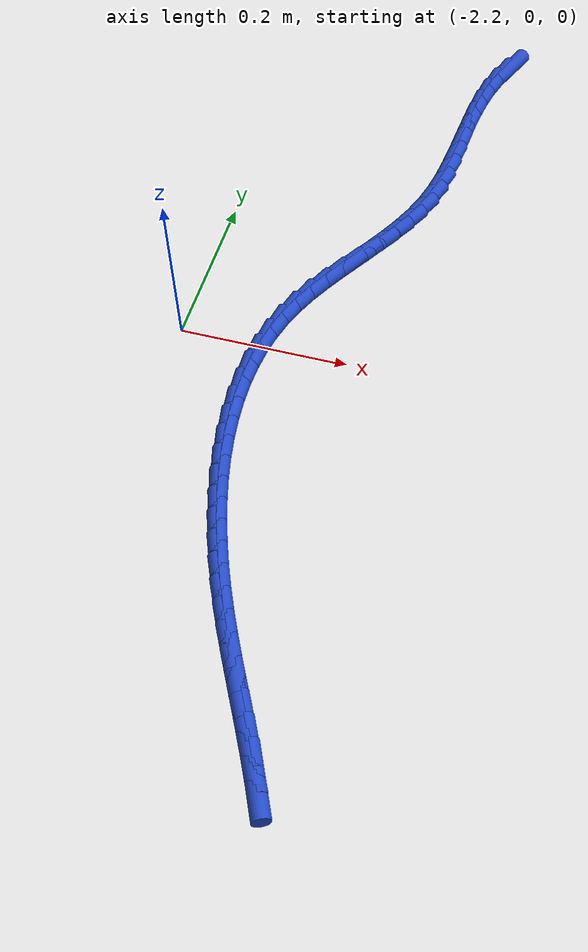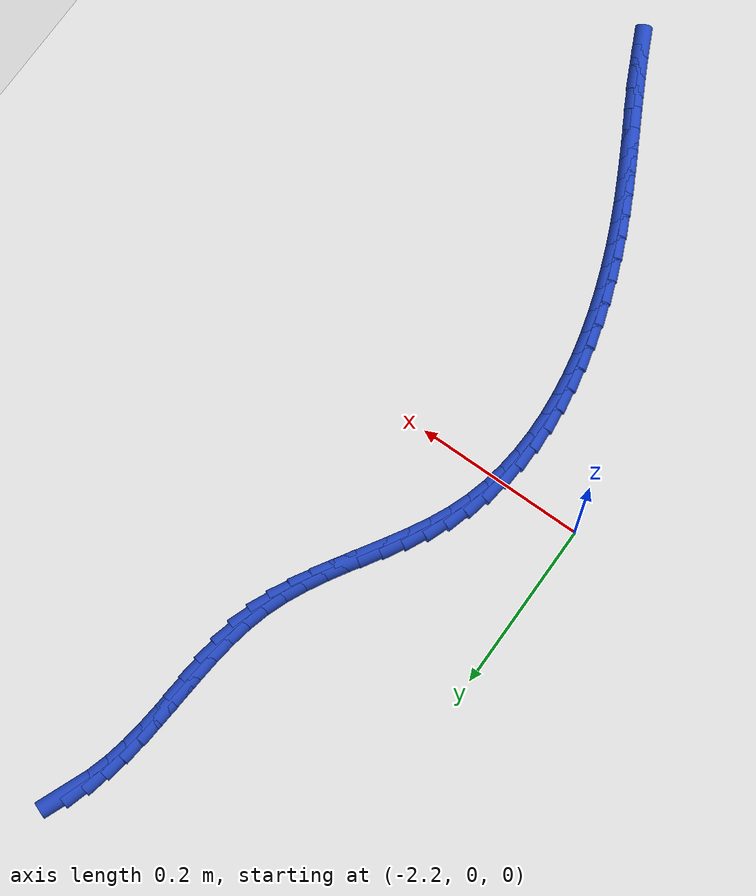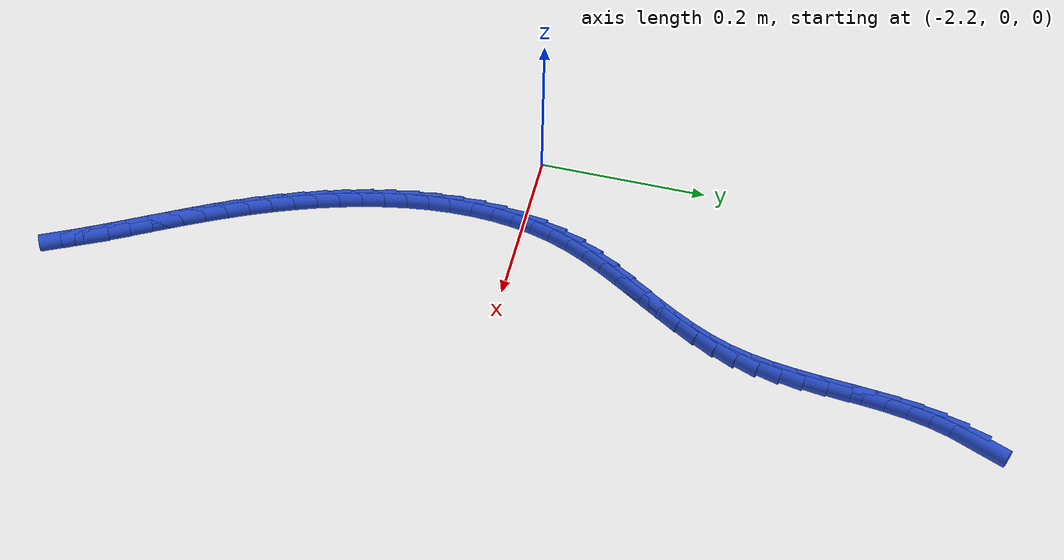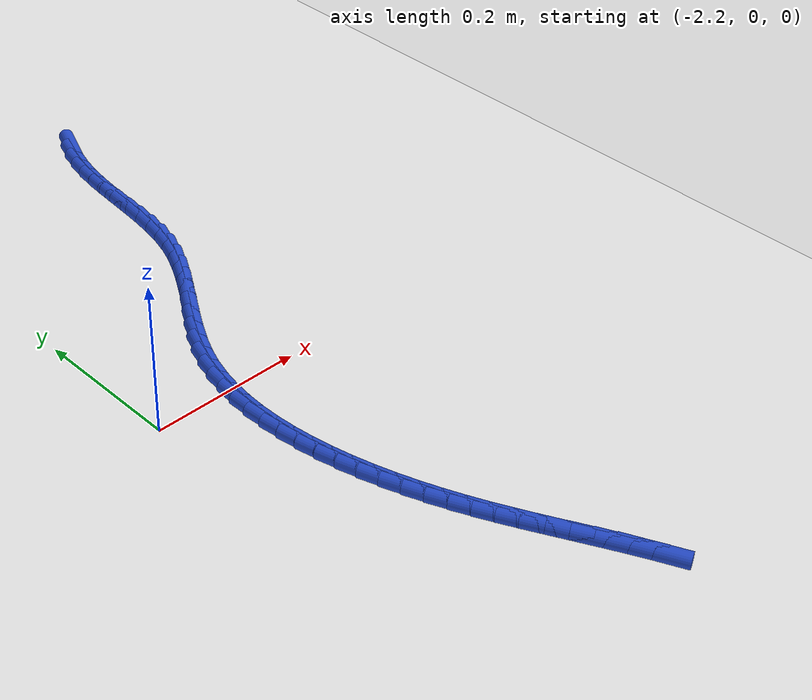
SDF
<sdf version="1.6">
 <world name="default">
  <model name="ground_plane">
   <static>1</static>
   <link name="link">
    <collision name="collision">
     <geometry><plane><normal>0 0 1</normal><size>100 100</size></plane></geometry>
     <surface><friction><ode><mu>100</mu><mu2>50</mu2></ode></friction></surface>
    </collision>
    <visual name="visual">
     <cast_shadows>0</cast_shadows>
     <geometry><plane><normal>0 0 1</normal><size>100 100</size></plane></geometry>
     <material>
      <script><uri>file://media/materials/scripts/gazebo.material</uri><name>Gazebo/WhiteGlow</name></script>
     </material>
    </visual>
   </link>
  </model>
  <model name="line">
   <link name="link_107">
    <pose>-1.9240325113513077 0.5416836741205137 0.01 0 1.57 1.184260432014111</pose>
    <collision name="collision">
     <geometry><cylinder><radius>0.01</radius><length>0.08</length></cylinder></geometry>
    </collision>
    <visual name="visual">
     <material>
      <script><name>Gazebo/Blue</name><uri>file://media/materials/scripts/gazebo.material</uri></script>
     </material>
     <geometry><cylinder><radius>0.01</radius><length>0.08</length></cylinder></geometry>
    </visual>
   </link>
   <link name="link_108">
    <pose>-1.9334057015845771 0.5186543584100881 0.01 0 1.57 1.2855655698755204</pose>
    <collision name="collision">
     <geometry><cylinder><radius>0.01</radius><length>0.08</length></cylinder></geometry>
    </collision>
    <visual name="visual">
     <material>
      <script><name>Gazebo/Blue</name><uri>file://media/materials/scripts/gazebo.material</uri></script>
     </material>
     <geometry><cylinder><radius>0.01</radius><length>0.08</length></cylinder></geometry>
    </visual>
   </link>
   <link name="link_109">
    <pose>-1.9404287001451967 0.49470356905386936 0.01 0 1.57 1.3687911085803255</pose>
    <collision name="collision">
     <geometry><cylinder><radius>0.01</radius><length>0.08</length></cylinder></geometry>
    </collision>
    <visual name="visual">
     <material>
      <script><name>Gazebo/Blue</name><uri>file://media/materials/scripts/gazebo.material</uri></script>
     </material>
     <geometry><cylinder><radius>0.01</radius><length>0.08</length></cylinder></geometry>
    </visual>
   </link>
   <link name="link_110">
    <pose>-1.9454922301618969 0.46997912061822705 0.01 0 1.57 1.4302631357296267</pose>
    <collision name="collision">
     <geometry><cylinder><radius>0.01</radius><length>0.08</length></cylinder></geometry>
    </collision>
    <visual name="visual">
     <material>
      <script><name>Gazebo/Blue</name><uri>file://media/materials/scripts/gazebo.material</uri></script>
     </material>
     <geometry><cylinder><radius>0.01</radius><length>0.08</length></cylinder></geometry>
    </visual>
   </link>
   <link name="link_111">
    <pose>-1.9490743959110837 0.44465732633197586 0.01 0 1.57 1.470949868932323</pose>
    <collision name="collision">
     <geometry><cylinder><radius>0.01</radius><length>0.08</length></cylinder></geometry>
    </collision>
    <visual name="visual">
     <material>
      <script><name>Gazebo/Blue</name><uri>file://media/materials/scripts/gazebo.material</uri></script>
     </material>
     <geometry><cylinder><radius>0.01</radius><length>0.08</length></cylinder></geometry>
    </visual>
   </link>
   <link name="link_112">
    <pose>-1.9516533016691662 0.41891449942392983 0.01 0 1.57 1.4919319957654222</pose>
    <collision name="collision">
     <geometry><cylinder><radius>0.01</radius><length>0.08</length></cylinder></geometry>
    </collision>
    <visual name="visual">
     <material>
      <script><name>Gazebo/Blue</name><uri>file://media/materials/scripts/gazebo.material</uri></script>
     </material>
     <geometry><cylinder><radius>0.01</radius><length>0.08</length></cylinder></geometry>
    </visual>
   </link>
   <link name="link_113">
    <pose>-1.9537070517125519 0.39292695312290327 0.01 0 1.57 1.4939330757148546</pose>
    <collision name="collision">
     <geometry><cylinder><radius>0.01</radius><length>0.08</length></cylinder></geometry>
    </collision>
    <visual name="visual">
     <material>
      <script><name>Gazebo/Blue</name><uri>file://media/materials/scripts/gazebo.material</uri></script>
     </material>
     <geometry><cylinder><radius>0.01</radius><length>0.08</length></cylinder></geometry>
    </visual>
   </link>
   <link name="link_114">
    <pose>-1.9557137503176472 0.3668710006577101 0.01 0 1.57 1.4771238674404625</pose>
    <collision name="collision">
     <geometry><cylinder><radius>0.01</radius><length>0.08</length></cylinder></geometry>
    </collision>
    <visual name="visual">
     <material>
      <script><name>Gazebo/Blue</name><uri>file://media/materials/scripts/gazebo.material</uri></script>
     </material>
     <geometry><cylinder><radius>0.01</radius><length>0.08</length></cylinder></geometry>
    </visual>
   </link>
   <link name="link_115">
    <pose>-1.9581515017608613 0.3409229552571643 0.01 0 1.57 1.4411147430137434</pose>
    <collision name="collision">
     <geometry><cylinder><radius>0.01</radius><length>0.08</length></cylinder></geometry>
    </collision>
    <visual name="visual">
     <material>
      <script><name>Gazebo/Blue</name><uri>file://media/materials/scripts/gazebo.material</uri></script>
     </material>
     <geometry><cylinder><radius>0.01</radius><length>0.08</length></cylinder></geometry>
    </visual>
   </link>
   <link name="link_116">
    <pose>-1.9614984103186013 0.31525913015008106 0.01 0 1.57 1.3851205705398277</pose>
    <collision name="collision">
     <geometry><cylinder><radius>0.01</radius><length>0.08</length></cylinder></geometry>
    </collision>
    <visual name="visual">
     <material>
      <script><name>Gazebo/Blue</name><uri>file://media/materials/scripts/gazebo.material</uri></script>
     </material>
     <geometry><cylinder><radius>0.01</radius><length>0.08</length></cylinder></geometry>
    </visual>
   </link>
   <link name="link_117">
    <pose>-1.966232580267274 0.2900558385652737 0.01 0 1.57 1.3083522950574102</pose>
    <collision name="collision">
     <geometry><cylinder><radius>0.01</radius><length>0.08</length></cylinder></geometry>
    </collision>
    <visual name="visual">
     <material>
      <script><name>Gazebo/Blue</name><uri>file://media/materials/scripts/gazebo.material</uri></script>
     </material>
     <geometry><cylinder><radius>0.01</radius><length>0.08</length></cylinder></geometry>
    </visual>
   </link>
   <link name="link_118">
    <pose>-1.9728321158832882 0.26548939373155656 0.01 0 1.57 1.2157342739816077</pose>
    <collision name="collision">
     <geometry><cylinder><radius>0.01</radius><length>0.08</length></cylinder></geometry>
    </collision>
    <visual name="visual">
     <material>
      <script><name>Gazebo/Blue</name><uri>file://media/materials/scripts/gazebo.material</uri></script>
     </material>
     <geometry><cylinder><radius>0.01</radius><length>0.08</length></cylinder></geometry>
    </visual>
   </link>
   <link name="link_119">
    <pose>-1.9816549750449284 0.24169371662602965 0.01 0 1.57 1.1349284830679935</pose>
    <collision name="collision">
     <geometry><cylinder><radius>0.01</radius><length>0.08</length></cylinder></geometry>
    </collision>
    <visual name="visual">
     <material>
      <script><name>Gazebo/Blue</name><uri>file://media/materials/scripts/gazebo.material</uri></script>
     </material>
     <geometry><cylinder><radius>0.01</radius><length>0.08</length></cylinder></geometry>
    </visual>
   </link>
   <link name="link_120">
    <pose>-1.9924211199301265 0.21857761890295707 0.01 0 1.57 1.0752080106898319</pose>
    <collision name="collision">
     <geometry><cylinder><radius>0.01</radius><length>0.08</length></cylinder></geometry>
    </collision>
    <visual name="visual">
     <material>
      <script><name>Gazebo/Blue</name><uri>file://media/materials/scripts/gazebo.material</uri></script>
     </material>
     <geometry><cylinder><radius>0.01</radius><length>0.08</length></cylinder></geometry>
    </visual>
   </link>
   <link name="link_121">
    <pose>-2.0046395621087063 0.19597548076116214 0.01 0 1.57 1.036102264989314</pose>
    <collision name="collision">
     <geometry><cylinder><radius>0.01</radius><length>0.08</length></cylinder></geometry>
    </collision>
    <visual name="visual">
     <material>
      <script><name>Gazebo/Blue</name><uri>file://media/materials/scripts/gazebo.material</uri></script>
     </material>
     <geometry><cylinder><radius>0.01</radius><length>0.08</length></cylinder></geometry>
    </visual>
   </link>
   <link name="link_122">
    <pose>-2.017819179134671 0.1737216351135528 0.01 0 1.57 1.0169300646372839</pose>
    <collision name="collision">
     <geometry><cylinder><radius>0.01</radius><length>0.08</length></cylinder></geometry>
    </collision>
    <visual name="visual">
     <material>
      <script><name>Gazebo/Blue</name><uri>file://media/materials/scripts/gazebo.material</uri></script>
     </material>
     <geometry><cylinder><radius>0.01</radius><length>0.08</length></cylinder></geometry>
    </visual>
   </link>
   <link name="link_123">
    <pose>-2.0314688485620254 0.15165041487303713 0.01 0 1.57 1.01727722497348</pose>
    <collision name="collision">
     <geometry><cylinder><radius>0.01</radius><length>0.08</length></cylinder></geometry>
    </collision>
    <visual name="visual">
     <material>
      <script><name>Gazebo/Blue</name><uri>file://media/materials/scripts/gazebo.material</uri></script>
     </material>
     <geometry><cylinder><radius>0.01</radius><length>0.08</length></cylinder></geometry>
    </visual>
   </link>
   <link name="link_124">
    <pose>-2.0450974479447726 0.1295961529525237 0.01 0 1.57 1.0372059952895474</pose>
    <collision name="collision">
     <geometry><cylinder><radius>0.01</radius><length>0.08</length></cylinder></geometry>
    </collision>
    <visual name="visual">
     <material>
      <script><name>Gazebo/Blue</name><uri>file://media/materials/scripts/gazebo.material</uri></script>
     </material>
     <geometry><cylinder><radius>0.01</radius><length>0.08</length></cylinder></geometry>
    </visual>
   </link>
   <link name="link_125">
    <pose>-2.0582138548369167 0.10739318226492041 0.01 0 1.57 1.0772555499089067</pose>
    <collision name="collision">
     <geometry><cylinder><radius>0.01</radius><length>0.08</length></cylinder></geometry>
    </collision>
    <visual name="visual">
     <material>
      <script><name>Gazebo/Blue</name><uri>file://media/materials/scripts/gazebo.material</uri></script>
     </material>
     <geometry><cylinder><radius>0.01</radius><length>0.08</length></cylinder></geometry>
    </visual>
   </link>
   <link name="link_126">
    <pose>-2.0703269467924614 0.08487583572313502 0.01 0 1.57 1.13822815398224</pose>
    <collision name="collision">
     <geometry><cylinder><radius>0.01</radius><length>0.08</length></cylinder></geometry>
    </collision>
    <visual name="visual">
     <material>
      <script><name>Gazebo/Blue</name><uri>file://media/materials/scripts/gazebo.material</uri></script>
     </material>
     <geometry><cylinder><radius>0.01</radius><length>0.08</length></cylinder></geometry>
    </visual>
   </link>
   <link name="link_127">
    <pose>-2.0809456013654106 0.06187844624007629 0.01 0 1.57 1.2191991928218653</pose>
    <collision name="collision">
     <geometry><cylinder><radius>0.01</radius><length>0.08</length></cylinder></geometry>
    </collision>
    <visual name="visual">
     <material>
      <script><name>Gazebo/Blue</name><uri>file://media/materials/scripts/gazebo.material</uri></script>
     </material>
     <geometry><cylinder><radius>0.01</radius><length>0.08</length></cylinder></geometry>
    </visual>
   </link>
   <link name="link_128">
    <pose>-2.0896134172588776 0.03825008574110823 0.01 0 1.57 1.304660501563539</pose>
    <collision name="collision">
     <geometry><cylinder><radius>0.01</radius><length>0.08</length></cylinder></geometry>
    </collision>
    <visual name="visual">
     <material>
      <script><name>Gazebo/Blue</name><uri>file://media/materials/scripts/gazebo.material</uri></script>
     </material>
     <geometry><cylinder><radius>0.01</radius><length>0.08</length></cylinder></geometry>
    </visual>
   </link>
   <link name="link_129">
    <pose>-2.096226877452282 0.01398962435462908 0.01 0 1.57 1.3850562781253821</pose>
    <collision name="collision">
     <geometry><cylinder><radius>0.01</radius><length>0.08</length></cylinder></geometry>
    </collision>
    <visual name="visual">
     <material>
      <script><name>Gazebo/Blue</name><uri>file://media/materials/scripts/gazebo.material</uri></script>
     </material>
     <geometry><cylinder><radius>0.01</radius><length>0.08</length></cylinder></geometry>
    </visual>
   </link>
   <link name="link_130">
    <pose>-2.1008881433777575 -0.0108167579710353 0.01 0 1.57 1.4598822471643502</pose>
    <collision name="collision">
     <geometry><cylinder><radius>0.01</radius><length>0.08</length></cylinder></geometry>
    </collision>
    <visual name="visual">
     <material>
      <script><name>Gazebo/Blue</name><uri>file://media/materials/scripts/gazebo.material</uri></script>
     </material>
     <geometry><cylinder><radius>0.01</radius><length>0.08</length></cylinder></geometry>
    </visual>
   </link>
   <link name="link_131">
    <pose>-2.103701939373528 -0.0360817933424369 0.01 0 1.57 1.5290421394849327</pose>
    <collision name="collision">
     <geometry><cylinder><radius>0.01</radius><length>0.08</length></cylinder></geometry>
    </collision>
    <visual name="visual">
     <material>
      <script><name>Gazebo/Blue</name><uri>file://media/materials/scripts/gazebo.material</uri></script>
     </material>
     <geometry><cylinder><radius>0.01</radius><length>0.08</length></cylinder></geometry>
    </visual>
   </link>
   <link name="link_132">
    <pose>-2.1047729897778185 -0.06171821386612767 0.01 0 1.57 -1.54892639269412</pose>
    <collision name="collision">
     <geometry><cylinder><radius>0.01</radius><length>0.08</length></cylinder></geometry>
    </collision>
    <visual name="visual">
     <material>
      <script><name>Gazebo/Blue</name><uri>file://media/materials/scripts/gazebo.material</uri></script>
     </material>
     <geometry><cylinder><radius>0.01</radius><length>0.08</length></cylinder></geometry>
    </visual>
   </link>
   <link name="link_133">
    <pose>-2.1042060189288536 -0.0876387516486604 0.01 0 1.57 -1.490552545287474</pose>
    <collision name="collision">
     <geometry><cylinder><radius>0.01</radius><length>0.08</length></cylinder></geometry>
    </collision>
    <visual name="visual">
     <material>
      <script><name>Gazebo/Blue</name><uri>file://media/materials/scripts/gazebo.material</uri></script>
     </material>
     <geometry><cylinder><radius>0.01</radius><length>0.08</length></cylinder></geometry>
    </visual>
   </link>
   <link name="link_134">
    <pose>-2.102105751164858 -0.11375613879658555 0.01 0 1.57 -1.4370495065724505</pose>
    <collision name="collision">
     <geometry><cylinder><radius>0.01</radius><length>0.08</length></cylinder></geometry>
    </collision>
    <visual name="visual">
     <material>
      <script><name>Gazebo/Blue</name><uri>file://media/materials/scripts/gazebo.material</uri></script>
     </material>
     <geometry><cylinder><radius>0.01</radius><length>0.08</length></cylinder></geometry>
    </visual>
   </link>
   <link name="link_135">
    <pose>-2.098576910824057 -0.1399831074164559 0.01 0 1.57 -1.3879908589930594</pose>
    <collision name="collision">
     <geometry><cylinder><radius>0.01</radius><length>0.08</length></cylinder></geometry>
    </collision>
    <visual name="visual">
     <material>
      <script><name>Gazebo/Blue</name><uri>file://media/materials/scripts/gazebo.material</uri></script>
     </material>
     <geometry><cylinder><radius>0.01</radius><length>0.08</length></cylinder></geometry>
    </visual>
   </link>
   <link name="link_136">
    <pose>-2.093724222244675 -0.1662323896148234 0.01 0 1.57 -1.342936223785985</pose>
    <collision name="collision">
     <geometry><cylinder><radius>0.01</radius><length>0.08</length></cylinder></geometry>
    </collision>
    <visual name="visual">
     <material>
      <script><name>Gazebo/Blue</name><uri>file://media/materials/scripts/gazebo.material</uri></script>
     </material>
     <geometry><cylinder><radius>0.01</radius><length>0.08</length></cylinder></geometry>
    </visual>
   </link>
   <link name="link_137">
    <pose>-2.0876524097649365 -0.19241671749823996 0.01 0 1.57 -1.3014524428834686</pose>
    <collision name="collision">
     <geometry><cylinder><radius>0.01</radius><length>0.08</length></cylinder></geometry>
    </collision>
    <visual name="visual">
     <material>
      <script><name>Gazebo/Blue</name><uri>file://media/materials/scripts/gazebo.material</uri></script>
     </material>
     <geometry><cylinder><radius>0.01</radius><length>0.08</length></cylinder></geometry>
    </visual>
   </link>
   <link name="link_138">
    <pose>-2.080466197723067 -0.21844882317325776 0.01 0 1.57 -1.26312572536153</pose>
    <collision name="collision">
     <geometry><cylinder><radius>0.01</radius><length>0.08</length></cylinder></geometry>
    </collision>
    <visual name="visual">
     <material>
      <script><name>Gazebo/Blue</name><uri>file://media/materials/scripts/gazebo.material</uri></script>
     </material>
     <geometry><cylinder><radius>0.01</radius><length>0.08</length></cylinder></geometry>
    </visual>
   </link>
   <link name="link_139">
    <pose>-2.0722703104572906 -0.24424143874642867 0.01 0 1.57 -1.2275673096142028</pose>
    <collision name="collision">
     <geometry><cylinder><radius>0.01</radius><length>0.08</length></cylinder></geometry>
    </collision>
    <visual name="visual">
     <material>
      <script><name>Gazebo/Blue</name><uri>file://media/materials/scripts/gazebo.material</uri></script>
     </material>
     <geometry><cylinder><radius>0.01</radius><length>0.08</length></cylinder></geometry>
    </visual>
   </link>
   <link name="link_140">
    <pose>-2.063169472305832 -0.26970729632430535 0.01 0 1.57 -1.1944146648242524</pose>
    <collision name="collision">
     <geometry><cylinder><radius>0.01</radius><length>0.08</length></cylinder></geometry>
    </collision>
    <visual name="visual">
     <material>
      <script><name>Gazebo/Blue</name><uri>file://media/materials/scripts/gazebo.material</uri></script>
     </material>
     <geometry><cylinder><radius>0.01</radius><length>0.08</length></cylinder></geometry>
    </visual>
   </link>
   <link name="link_141">
    <pose>-2.0532684076069168 -0.2947591280134384 0.01 0 1.57 -1.1633296802036444</pose>
    <collision name="collision">
     <geometry><cylinder><radius>0.01</radius><length>0.08</length></cylinder></geometry>
    </collision>
    <visual name="visual">
     <material>
      <script><name>Gazebo/Blue</name><uri>file://media/materials/scripts/gazebo.material</uri></script>
     </material>
     <geometry><cylinder><radius>0.01</radius><length>0.08</length></cylinder></geometry>
    </visual>
   </link>
   <link name="link_142">
    <pose>-2.0426718406987687 -0.3193096659203805 0.01 0 1.57 -1.1344954373759208</pose>
    <collision name="collision">
     <geometry><cylinder><radius>0.01</radius><length>0.08</length></cylinder></geometry>
    </collision>
    <visual name="visual">
     <material>
      <script><name>Gazebo/Blue</name><uri>file://media/materials/scripts/gazebo.material</uri></script>
     </material>
     <geometry><cylinder><radius>0.01</radius><length>0.08</length></cylinder></geometry>
    </visual>
   </link>
   <link name="link_143">
    <pose>-2.0314884662707526 -0.3432944574867151 0.01 0 1.57 -1.110502540882931</pose>
    <collision name="collision">
     <geometry><cylinder><radius>0.01</radius><length>0.08</length></cylinder></geometry>
    </collision>
    <visual name="visual">
     <material>
      <script><name>Gazebo/Blue</name><uri>file://media/materials/scripts/gazebo.material</uri></script>
     </material>
     <geometry><cylinder><radius>0.01</radius><length>0.08</length></cylinder></geometry>
    </visual>
   </link>
   <link name="link_144">
    <pose>-2.019848265805794 -0.36677137317026753 0.01 0 1.57 -1.0924816405791444</pose>
    <collision name="collision">
     <geometry><cylinder><radius>0.01</radius><length>0.08</length></cylinder></geometry>
    </collision>
    <visual name="visual">
     <material>
      <script><name>Gazebo/Blue</name><uri>file://media/materials/scripts/gazebo.material</uri></script>
     </material>
     <geometry><cylinder><radius>0.01</radius><length>0.08</length></cylinder></geometry>
    </visual>
   </link>
   <link name="link_145">
    <pose>-2.0078883245633556 -0.38983910476581196 0.01 0 1.57 -1.0806548825032993</pose>
    <collision name="collision">
     <geometry><cylinder><radius>0.01</radius><length>0.08</length></cylinder></geometry>
    </collision>
    <visual name="visual">
     <material>
      <script><name>Gazebo/Blue</name><uri>file://media/materials/scripts/gazebo.material</uri></script>
     </material>
     <geometry><cylinder><radius>0.01</radius><length>0.08</length></cylinder></geometry>
    </visual>
   </link>
   <link name="link_146">
    <pose>-1.9957457327441308 -0.4125963724625474 0.01 0 1.57 -1.0751972006385544</pose>
    <collision name="collision">
     <geometry><cylinder><radius>0.01</radius><length>0.08</length></cylinder></geometry>
    </collision>
    <visual name="visual">
     <material>
      <script><name>Gazebo/Blue</name><uri>file://media/materials/scripts/gazebo.material</uri></script>
     </material>
     <geometry><cylinder><radius>0.01</radius><length>0.08</length></cylinder></geometry>
    </visual>
   </link>
   <link name="link_147">
    <pose>-1.9835575805488113 -0.4351418964496719 0.01 0 1.57 -1.0762474951722985</pose>
    <collision name="collision">
     <geometry><cylinder><radius>0.01</radius><length>0.08</length></cylinder></geometry>
    </collision>
    <visual name="visual">
     <material>
      <script><name>Gazebo/Blue</name><uri>file://media/materials/scripts/gazebo.material</uri></script>
     </material>
     <geometry><cylinder><radius>0.01</radius><length>0.08</length></cylinder></geometry>
    </visual>
   </link>
   <link name="link_148">
    <pose>-1.9714609581780913 -0.45757439691638435 0.01 0 1.57 -1.0839129466098132</pose>
    <collision name="collision">
     <geometry><cylinder><radius>0.01</radius><length>0.08</length></cylinder></geometry>
    </collision>
    <visual name="visual">
     <material>
      <script><name>Gazebo/Blue</name><uri>file://media/materials/scripts/gazebo.material</uri></script>
     </material>
     <geometry><cylinder><radius>0.01</radius><length>0.08</length></cylinder></geometry>
    </visual>
   </link>
   <link name="link_149">
    <pose>-1.9595929558326624 -0.47999259405188394 0.01 0 1.57 -1.098265704679291</pose>
    <collision name="collision">
     <geometry><cylinder><radius>0.01</radius><length>0.08</length></cylinder></geometry>
    </collision>
    <visual name="visual">
     <material>
      <script><name>Gazebo/Blue</name><uri>file://media/materials/scripts/gazebo.material</uri></script>
     </material>
     <geometry><cylinder><radius>0.01</radius><length>0.08</length></cylinder></geometry>
    </visual>
   </link>
   <link name="link_150">
    <pose>-1.9480906637132192 -0.5024952080453678 0.01 0 1.57 -1.1193311122181904</pose>
    <collision name="collision">
     <geometry><cylinder><radius>0.01</radius><length>0.08</length></cylinder></geometry>
    </collision>
    <visual name="visual">
     <material>
      <script><name>Gazebo/Blue</name><uri>file://media/materials/scripts/gazebo.material</uri></script>
     </material>
     <geometry><cylinder><radius>0.01</radius><length>0.08</length></cylinder></geometry>
    </visual>
   </link>
  </model>
 </world>
</sdf>
